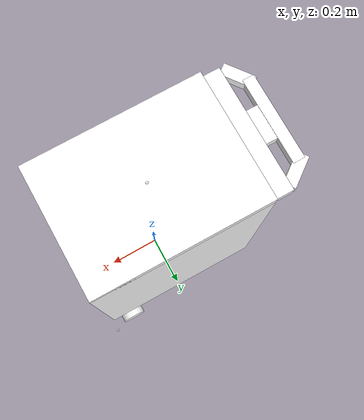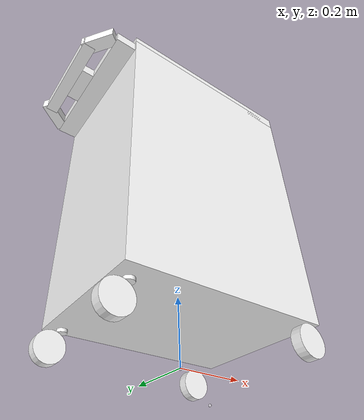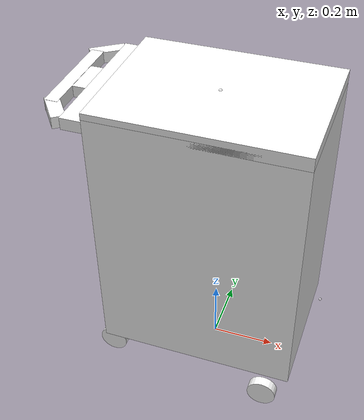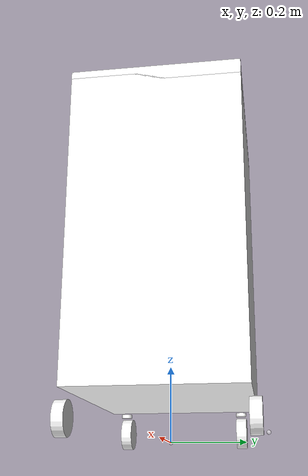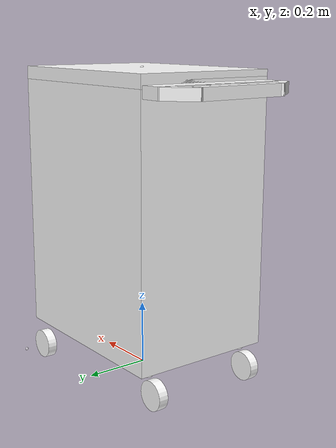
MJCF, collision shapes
<mujoco model="workshop_trolley_a01">
  <default>
    <default class="visual">
      <geom group="1" type="mesh" contype="0" conaffinity="0" density="100"/>
    </default>
    <default class="collision">
      <geom group="0" type="mesh" density="100" solimp="0.95 0.98 0.001" solref="0.004 1" rgba="1 1 1 0.25"/>
    </default>
    <default class="steering_wheel_joint">
      <joint frictionloss="0.001" damping="0.001" limited="false" type="hinge"/>
    </default>
    <default class="wheel_joint">
      <joint frictionloss="0.001" damping="0.01" limited="false" type="hinge"/>
    </default>
  </default>
  <asset>
    <material name="opaque__metal__glossy_a_workshoptrolley_a.001" specular="1.0" shininess="0.2" rgba="1.000000 1.000000 1.000000 1.000000"/>
    <texture type="2d" name="T_Plastic_Blue_A_Albedo" file="textures/T_Plastic_Blue_A_Albedo.png"/>
    <material name="opaque__metal__painted_blue_rough_a_workshoptrolley_a.001" texture="T_Plastic_Blue_A_Albedo" specular="1.0" shininess="0.2"/>
    <material name="opaque__metal__painted_gray_rough_a_workshoptrolley_a.001" specular="1.0" shininess="0.2" rgba="0.101209 0.100893 0.100893 1.000000"/>
    <material name="opaque__metal__rough_a_workshoptrolley_a.001" specular="1.0" shininess="0.2" rgba="0.386100 0.386097 0.386097 1.000000"/>
    <material name="opaque__plastic__black_a_workshoptrolley_a.001" specular="1.0" shininess="0.2" rgba="0.274131 0.274129 0.274129 1.000000"/>
    <material name="opaque__rubber__black_glossy_a_workshoptrolley_a.001" specular="1.0" shininess="0.2" rgba="0.005000 0.005000 0.005000 1.000000"/>
    <mesh file="meshes/workshop_trolley_a01_0.obj" name="workshop_trolley_a01_0"/>
    <mesh file="meshes/workshop_trolley_a01_2.obj" name="workshop_trolley_a01_2"/>
    <mesh file="meshes/workshop_trolley_a01_5.obj" name="workshop_trolley_a01_5"/>
    <mesh file="meshes/wheel_disk.obj" name="wheel_disk"/>
    <mesh file="meshes/wheel_hinge.obj" name="wheel_hinge"/>
    <mesh file="meshes/wheel_rubber.obj" name="wheel_rubber"/>
  </asset>
  <worldbody>
    <body>
      <body name="object">
        <geom mesh="workshop_trolley_a01_0" material="opaque__metal__painted_gray_rough_a_workshoptrolley_a.001" class="visual"/>
        <geom mesh="workshop_trolley_a01_2" material="opaque__plastic__black_a_workshoptrolley_a.001" class="visual"/>
        <geom mesh="workshop_trolley_a01_5" material="opaque__metal__painted_blue_rough_a_workshoptrolley_a.001" class="visual"/>
        <geom name="collider_box_73dde72e" type="box" pos="-0.4067681790764488 0.17105084955545624 0.9027340544410308" size="0.01707826946416252 0.02 0.053962591734132634" quat="0.6681452044376381 -0.2254240572440235 0.6727313268551627 0.22405031147115656" class="collision"/>
        <geom name="collider_box_73dde72e_1" type="box" pos="-0.4067681790764488 -0.17105084955545624 0.9027340544410308" size="0.01707826946416252 0.053962591734132634 0.02" quat="0.6681452044376381 -0.2254240572440235 0.6727313268551627 0.22405031147115656" class="collision"/>
        <geom name="collider_box_e86733a3" type="box" pos="-0.38693448 0 0.9022095750000001" size="0.017218824999999993 0.05 0.06" quat="0.5 0.5 0.5000000000000001 -0.49999999999999983" class="collision"/>
        <geom name="collider_box_73f211d4" type="box" pos="-0.42967966 0 0.9026387699999999" size="0.017648410000000003 0.02 0.15" quat="0.5 0.4999999999999998 -0.5000000000000002 0.5000000000000001" class="collision"/>
        <geom name="collider_box_73f211d4_1" type="box" pos="-0.32967966 0 0.9026387699999999" size="0.017648410000000003 0.04 0.22" quat="0.5 0.4999999999999998 -0.5000000000000002 0.5000000000000001" class="collision"/>
        <geom name="collider_box_body" type="box" pos="0 0 0.52" size="0.305 0.225 0.41" class="collision"/>
        <geom name="collider_box_tray" type="box" pos="0 0 0.93" size="0.305 0.225 0.02" class="collision"/>
        <!-- Front-left wheel -->
        <body name="wheel_fl_spin" pos="0.2288 0.232 0.045">
          <joint name="wheel_fl_spin" type="hinge" axis="0 1 0" class="wheel_joint"/>
          <geom type="mesh" mesh="wheel_disk" material="opaque__metal__rough_a_workshoptrolley_a.001" class="visual"/>
          <geom type="mesh" mesh="wheel_rubber" material="opaque__rubber__black_glossy_a_workshoptrolley_a.001" class="visual"/>
          <geom type="cylinder" size="0.045 0.015" quat="0.7071068 0.7071068 0 0" class="collision"/>
        </body>
        <!-- Front-right wheel -->
        <body name="wheel_fr_spin" pos="0.2288 -0.232 0.045">
          <joint name="wheel_fr_spin" type="hinge" axis="0 1 0" class="wheel_joint"/>
          <geom type="mesh" mesh="wheel_disk" material="opaque__metal__rough_a_workshoptrolley_a.001" class="visual"/>
          <geom type="mesh" mesh="wheel_rubber" material="opaque__rubber__black_glossy_a_workshoptrolley_a.001" class="visual"/>
          <geom type="cylinder" size="0.045 0.015" quat="0.7071068 0.7071068 0 0" class="collision"/>
        </body>
        <!-- Rear-left wheel -->
        <body name="wheel_rl_rot" pos="-0.265 0.175 0.107">
          <joint name="wheel_rl_zrot" type="hinge" axis="0 0 1" class="steering_wheel_joint"/>
          <geom type="mesh" mesh="wheel_hinge" material="opaque__metal__rough_a_workshoptrolley_a.001" class="visual"/>
          <geom type="cylinder" size="0.015 0.005" pos="0 0 -0.01" class="collision"/>
          <body name="wheel_rl_spin" pos="-0.033 0 -0.062">
            <joint name="wheel_rl_spin" type="hinge" axis="0 1 0" class="wheel_joint"/>
            <geom type="mesh" mesh="wheel_disk" material="opaque__metal__rough_a_workshoptrolley_a.001" class="visual"/>
            <geom type="mesh" mesh="wheel_rubber" material="opaque__rubber__black_glossy_a_workshoptrolley_a.001" class="visual"/>
            <geom type="cylinder" size="0.045 0.015" quat="0.7071068 0.7071068 0 0" class="collision"/>
          </body>
        </body>
        <!-- Rear-right wheel -->
        <body name="wheel_rr_rot" pos="-0.265 -0.175 0.107">
          <joint name="wheel_rr_zrot" type="hinge" axis="0 0 1" class="steering_wheel_joint"/>
          <geom type="mesh" mesh="wheel_hinge" material="opaque__metal__rough_a_workshoptrolley_a.001" class="visual"/>
          <geom type="cylinder" size="0.015 0.005" pos="0 0 -0.01" class="collision"/>
          <body name="wheel_rr_spin" pos="-0.033 0 -0.062">
            <joint name="wheel_rr_spin" type="hinge" axis="0 1 0" class="wheel_joint"/>
            <geom type="mesh" mesh="wheel_disk" material="opaque__metal__rough_a_workshoptrolley_a.001" class="visual"/>
            <geom type="mesh" mesh="wheel_rubber" material="opaque__rubber__black_glossy_a_workshoptrolley_a.001" class="visual"/>
            <geom type="cylinder" size="0.045 0.015" quat="0.7071068 0.7071068 0 0" class="collision"/>
          </body>
        </body>
      </body>
      <site name="bottom_site" pos="0 0 -0.000228" rgba="1 1 1 0.5" size="0.005"/>
      <site name="top_site" pos="0 0 0.950095" rgba="1 1 1 0.5" size="0.005"/>
      <site name="horizontal_radius_site" pos="0.317 0.259212 0" rgba="1 1 1 0.5" size="0.005"/>
    </body>
  </worldbody>
</mujoco>
